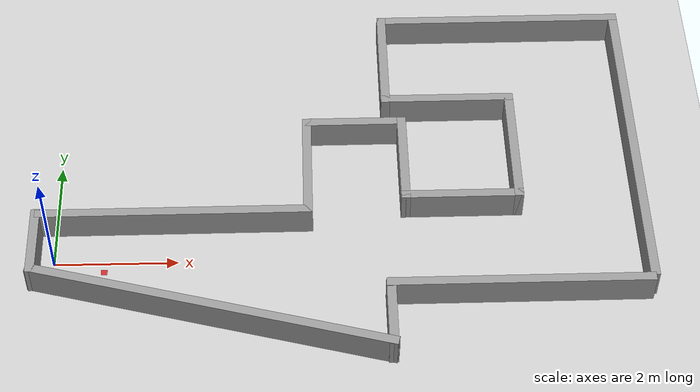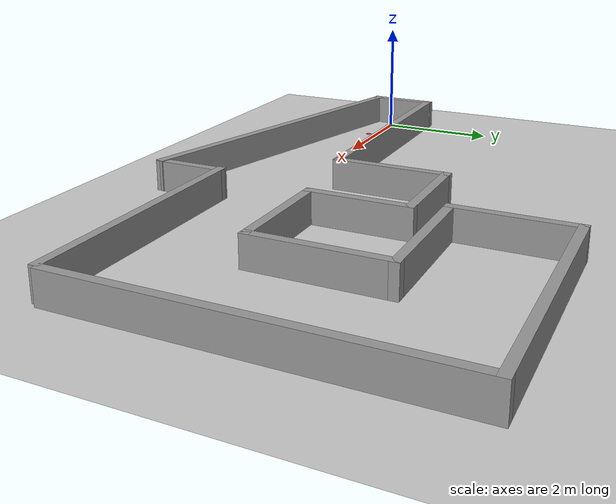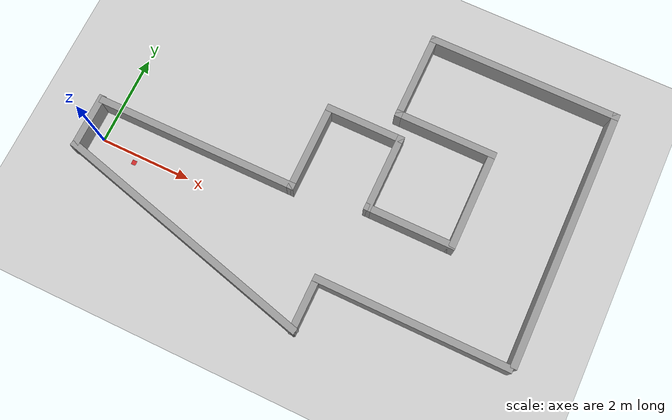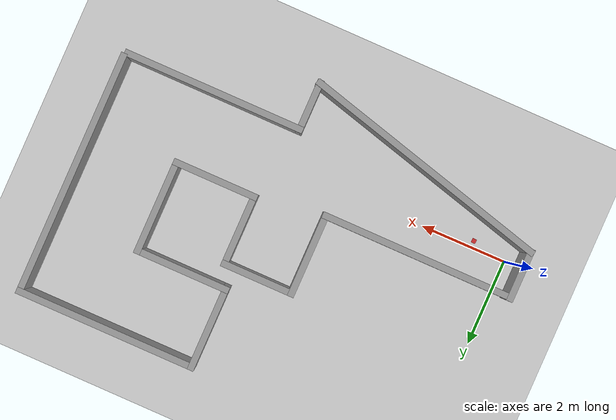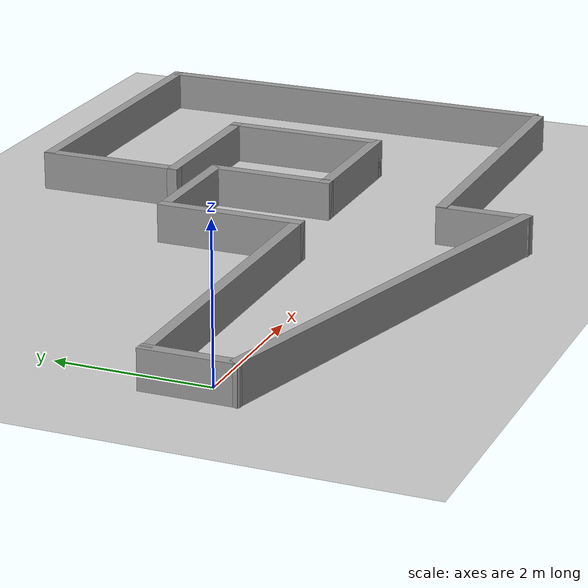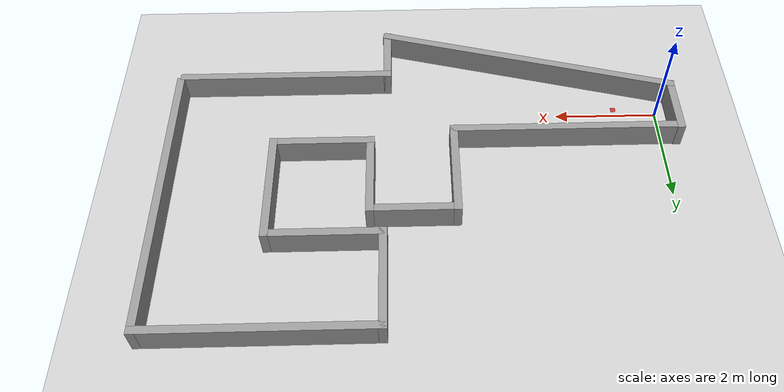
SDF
<sdf version="1.7">
 <world name="default">
  <scene><ambient>0.4 0.4 0.4 1</ambient><background>0.7 0.7 0.7 1</background><shadows>1</shadows></scene>
  <light name="sun" type="directional">
   <pose>0 0 10 0 -0 0</pose>
   <diffuse>0.8 0.8 0.8 1</diffuse>
   <specular>0.2 0.2 0.2 1</specular>
   <attenuation>
    <range>1000</range>
    <constant>0.9</constant>
    <linear>0.01</linear>
    <quadratic>0.001</quadratic>
   </attenuation>
   <direction>-0.5 0.1 -0.9</direction>
   <spot><inner_angle>0</inner_angle><outer_angle>0</outer_angle><falloff>0</falloff></spot>
  </light>
  <model name="ground_plane">
   <static>1</static>
   <link name="link">
    <collision name="collision">
     <geometry><plane><normal>0 0 1</normal><size>100 100</size></plane></geometry>
     <surface>
      <contact><collide_bitmask>65535</collide_bitmask></contact>
      <friction><ode><mu>100</mu><mu2>50</mu2></ode></friction>
     </surface>
    </collision>
    <visual name="visual">
     <cast_shadows>0</cast_shadows>
     <geometry><plane><normal>0 0 1</normal><size>100 100</size></plane></geometry>
     <material>
      <script><uri>file://media/materials/scripts/gazebo.material</uri><name>Gazebo/Grey</name></script>
     </material>
    </visual>
   </link>
  </model>
  <physics type="ode">
   <real_time_update_rate>1000</real_time_update_rate>
   <max_step_size>0.001</max_step_size>
   <real_time_factor>1</real_time_factor>
   <ode>
    <solver>
     <type>quick</type>
     <iters>150</iters>
     <precon_iters>0</precon_iters>
     <sor>1.4</sor>
     <use_dynamic_moi_rescaling>1</use_dynamic_moi_rescaling>
    </solver>
    <constraints>
     <cfm>1e-05</cfm>
     <erp>0.2</erp>
     <contact_max_correcting_vel>2000</contact_max_correcting_vel>
     <contact_surface_layer>0.01</contact_surface_layer>
    </constraints>
   </ode>
  </physics>
  <gravity>0 0 -9.8</gravity>
  <magnetic_field>6e-06 2.3e-05 -4.2e-05</magnetic_field>
  <atmosphere type="adiabatic"/>
  <spherical_coordinates>
   <surface_model>EARTH_WGS84</surface_model>
   <latitude_deg>0</latitude_deg>
   <longitude_deg>0</longitude_deg>
   <elevation>0</elevation>
   <heading_deg>0</heading_deg>
  </spherical_coordinates>
  <model name="Token">
   <link name="link_0">
    <inertial>
     <mass>8.311e-05</mass>
     <inertia><ixx>9e-08</ixx><ixy>0</ixy><ixz>0</ixz><iyy>1.4e-07</iyy><iyz>0</iyz><izz>2.3e-07</izz></inertia>
    </inertial>
    <self_collide>1</self_collide>
    <kinematic>1</kinematic>
    <visual name="visual">
     <geometry><box><size>0.1 0.1 1e-05</size></box></geometry>
     <material>
      <lighting>1</lighting>
      <script><uri>file://media/materials/scripts/gazebo.material</uri><name>Gazebo/Grey</name></script>
      <shader type="pixel"><normal_map>__default__</normal_map></shader>
      <ambient>0.796 0.169 0.169 1</ambient>
      <diffuse>0.792 0.169 0.169 1</diffuse>
      <specular>0.298 0.298 0.298 1</specular>
      <emissive>0.792 0.169 0.169 1</emissive>
     </material>
    </visual>
    <collision name="collision">
     <max_contacts>1</max_contacts>
     <geometry><box><size>0.1 0.1 1e-05</size></box></geometry>
     <surface>
      <friction>
       <ode><mu>1</mu><mu2>1</mu2><fdir1>0 0 0</fdir1><slip1>0</slip1><slip2>0</slip2></ode>
       <torsional>
        <coefficient>1</coefficient>
        <patch_radius>0</patch_radius>
        <surface_radius>0</surface_radius>
        <use_patch_radius>1</use_patch_radius>
        <ode><slip>0</slip></ode>
       </torsional>
      </friction>
      <bounce><restitution_coefficient>0</restitution_coefficient><threshold>1e+06</threshold></bounce>
      <contact>
       <collide_without_contact>0</collide_without_contact>
       <collide_without_contact_bitmask>1</collide_without_contact_bitmask>
       <collide_bitmask>1</collide_bitmask>
       <ode>
        <soft_cfm>0</soft_cfm>
        <soft_erp>0.2</soft_erp>
        <kp>1e+13</kp>
        <kd>1</kd>
        <max_vel>0.01</max_vel>
        <min_depth>0</min_depth>
       </ode>
       <bullet>
        <split_impulse>1</split_impulse>
        <split_impulse_penetration_threshold>-0.01</split_impulse_penetration_threshold>
        <soft_cfm>0</soft_cfm>
        <soft_erp>0.2</soft_erp>
        <kp>1e+13</kp>
        <kd>1</kd>
       </bullet>
      </contact>
     </surface>
    </collision>
   </link>
   <static>0</static>
   <pose>0.810591 -0.16058 0 0 -0 0</pose>
  </model>
  <model name="walls">
   <link name="Wall_10">
    <pose>2.01446 -0.541626 0 0 -0 0</pose>
    <inertial>
     <mass>1</mass>
     <inertia><ixx>1</ixx><ixy>0</ixy><ixz>0</ixz><iyy>1</iyy><iyz>0</iyz><izz>1</izz></inertia>
    </inertial>
    <visual name="Wall_10_Visual">
     <geometry><box><size>2 0.15 1</size></box></geometry>
     <material>
      <script><uri>file://media/materials/scripts/gazebo.material</uri><name>Gazebo/Grey</name></script>
      <ambient>1 1 1 1</ambient>
      <shader type="pixel"><normal_map>__default__</normal_map></shader>
      <diffuse>0.7 0.7 0.7 1</diffuse>
      <specular>0.01 0.01 0.01 1</specular>
      <emissive>0 0 0 1</emissive>
     </material>
     <meta><layer>0</layer></meta>
    </visual>
    <collision name="Wall_10_Collision">
     <geometry><box><size>2 0.15 1</size></box></geometry>
     <surface>
      <friction>
       <ode><mu>1</mu><mu2>1</mu2><fdir1>0 0 0</fdir1><slip1>0</slip1><slip2>0</slip2></ode>
       <torsional>
        <coefficient>1</coefficient>
        <patch_radius>0</patch_radius>
        <surface_radius>0</surface_radius>
        <use_patch_radius>1</use_patch_radius>
        <ode><slip>0</slip></ode>
       </torsional>
      </friction>
      <bounce><restitution_coefficient>0</restitution_coefficient><threshold>1e+06</threshold></bounce>
      <contact>
       <collide_without_contact>0</collide_without_contact>
       <collide_without_contact_bitmask>1</collide_without_contact_bitmask>
       <collide_bitmask>1</collide_bitmask>
       <ode>
        <soft_cfm>0</soft_cfm>
        <soft_erp>0.2</soft_erp>
        <kp>1e+13</kp>
        <kd>1</kd>
        <max_vel>0.01</max_vel>
        <min_depth>0</min_depth>
       </ode>
       <bullet>
        <split_impulse>1</split_impulse>
        <split_impulse_penetration_threshold>-0.01</split_impulse_penetration_threshold>
        <soft_cfm>0</soft_cfm>
        <soft_erp>0.2</soft_erp>
        <kp>1e+13</kp>
        <kd>1</kd>
       </bullet>
      </contact>
     </surface>
    </collision>
   </link>
   <link name="Wall_14">
    <pose>2.93946 0.508374 0 0 -0 1.5708</pose>
    <inertial>
     <mass>1</mass>
     <inertia><ixx>1</ixx><ixy>0</ixy><ixz>0</ixz><iyy>1</iyy><iyz>0</iyz><izz>1</izz></inertia>
    </inertial>
    <visual name="Wall_14_Visual">
     <geometry><box><size>2.25 0.15 1</size></box></geometry>
     <material>
      <script><uri>file://media/materials/scripts/gazebo.material</uri><name>Gazebo/Grey</name></script>
      <ambient>1 1 1 1</ambient>
      <shader type="pixel"><normal_map>__default__</normal_map></shader>
      <diffuse>0.7 0.7 0.7 1</diffuse>
      <specular>0.01 0.01 0.01 1</specular>
      <emissive>0 0 0 1</emissive>
     </material>
     <meta><layer>0</layer></meta>
    </visual>
    <collision name="Wall_14_Collision">
     <geometry><box><size>2.25 0.15 1</size></box></geometry>
     <surface>
      <friction>
       <ode><mu>1</mu><mu2>1</mu2><fdir1>0 0 0</fdir1><slip1>0</slip1><slip2>0</slip2></ode>
       <torsional>
        <coefficient>1</coefficient>
        <patch_radius>0</patch_radius>
        <surface_radius>0</surface_radius>
        <use_patch_radius>1</use_patch_radius>
        <ode><slip>0</slip></ode>
       </torsional>
      </friction>
      <bounce><restitution_coefficient>0</restitution_coefficient><threshold>1e+06</threshold></bounce>
      <contact>
       <collide_without_contact>0</collide_without_contact>
       <collide_without_contact_bitmask>1</collide_without_contact_bitmask>
       <collide_bitmask>1</collide_bitmask>
       <ode>
        <soft_cfm>0</soft_cfm>
        <soft_erp>0.2</soft_erp>
        <kp>1e+13</kp>
        <kd>1</kd>
        <max_vel>0.01</max_vel>
        <min_depth>0</min_depth>
       </ode>
       <bullet>
        <split_impulse>1</split_impulse>
        <split_impulse_penetration_threshold>-0.01</split_impulse_penetration_threshold>
        <soft_cfm>0</soft_cfm>
        <soft_erp>0.2</soft_erp>
        <kp>1e+13</kp>
        <kd>1</kd>
       </bullet>
      </contact>
     </surface>
    </collision>
   </link>
   <link name="Wall_15">
    <pose>1.88946 1.55837 0 0 -0 3.14159</pose>
    <inertial>
     <mass>1</mass>
     <inertia><ixx>1</ixx><ixy>0</ixy><ixz>0</ixz><iyy>1</iyy><iyz>0</iyz><izz>1</izz></inertia>
    </inertial>
    <visual name="Wall_15_Visual">
     <geometry><box><size>2.25 0.15 1</size></box></geometry>
     <material>
      <script><uri>file://media/materials/scripts/gazebo.material</uri><name>Gazebo/Grey</name></script>
      <ambient>1 1 1 1</ambient>
      <shader type="pixel"><normal_map>__default__</normal_map></shader>
      <diffuse>0.7 0.7 0.7 1</diffuse>
      <specular>0.01 0.01 0.01 1</specular>
      <emissive>0 0 0 1</emissive>
     </material>
     <meta><layer>0</layer></meta>
    </visual>
    <collision name="Wall_15_Collision">
     <geometry><box><size>2.25 0.15 1</size></box></geometry>
     <surface>
      <friction>
       <ode><mu>1</mu><mu2>1</mu2><fdir1>0 0 0</fdir1><slip1>0</slip1><slip2>0</slip2></ode>
       <torsional>
        <coefficient>1</coefficient>
        <patch_radius>0</patch_radius>
        <surface_radius>0</surface_radius>
        <use_patch_radius>1</use_patch_radius>
        <ode><slip>0</slip></ode>
       </torsional>
      </friction>
      <bounce><restitution_coefficient>0</restitution_coefficient><threshold>1e+06</threshold></bounce>
      <contact>
       <collide_without_contact>0</collide_without_contact>
       <collide_without_contact_bitmask>1</collide_without_contact_bitmask>
       <collide_bitmask>1</collide_bitmask>
       <ode>
        <soft_cfm>0</soft_cfm>
        <soft_erp>0.2</soft_erp>
        <kp>1e+13</kp>
        <kd>1</kd>
        <max_vel>0.01</max_vel>
        <min_depth>0</min_depth>
       </ode>
       <bullet>
        <split_impulse>1</split_impulse>
        <split_impulse_penetration_threshold>-0.01</split_impulse_penetration_threshold>
        <soft_cfm>0</soft_cfm>
        <soft_erp>0.2</soft_erp>
        <kp>1e+13</kp>
        <kd>1</kd>
       </bullet>
      </contact>
     </surface>
    </collision>
   </link>
   <link name="Wall_16">
    <pose>0.839457 2.48337 0 0 -0 1.5708</pose>
    <inertial>
     <mass>1</mass>
     <inertia><ixx>1</ixx><ixy>0</ixy><ixz>0</ixz><iyy>1</iyy><iyz>0</iyz><izz>1</izz></inertia>
    </inertial>
    <visual name="Wall_16_Visual">
     <geometry><box><size>2 0.15 1</size></box></geometry>
     <material>
      <script><uri>file://media/materials/scripts/gazebo.material</uri><name>Gazebo/Grey</name></script>
      <ambient>1 1 1 1</ambient>
      <shader type="pixel"><normal_map>__default__</normal_map></shader>
      <diffuse>0.7 0.7 0.7 1</diffuse>
      <specular>0.01 0.01 0.01 1</specular>
      <emissive>0 0 0 1</emissive>
     </material>
     <meta><layer>0</layer></meta>
    </visual>
    <collision name="Wall_16_Collision">
     <geometry><box><size>2 0.15 1</size></box></geometry>
     <surface>
      <friction>
       <ode><mu>1</mu><mu2>1</mu2><fdir1>0 0 0</fdir1><slip1>0</slip1><slip2>0</slip2></ode>
       <torsional>
        <coefficient>1</coefficient>
        <patch_radius>0</patch_radius>
        <surface_radius>0</surface_radius>
        <use_patch_radius>1</use_patch_radius>
        <ode><slip>0</slip></ode>
       </torsional>
      </friction>
      <bounce><restitution_coefficient>0</restitution_coefficient><threshold>1e+06</threshold></bounce>
      <contact>
       <collide_without_contact>0</collide_without_contact>
       <collide_without_contact_bitmask>1</collide_without_contact_bitmask>
       <collide_bitmask>1</collide_bitmask>
       <ode>
        <soft_cfm>0</soft_cfm>
        <soft_erp>0.2</soft_erp>
        <kp>1e+13</kp>
        <kd>1</kd>
        <max_vel>0.01</max_vel>
        <min_depth>0</min_depth>
       </ode>
       <bullet>
        <split_impulse>1</split_impulse>
        <split_impulse_penetration_threshold>-0.01</split_impulse_penetration_threshold>
        <soft_cfm>0</soft_cfm>
        <soft_erp>0.2</soft_erp>
        <kp>1e+13</kp>
        <kd>1</kd>
       </bullet>
      </contact>
     </surface>
    </collision>
   </link>
   <link name="Wall_17">
    <pose>2.88946 3.40837 0 0 -0 0</pose>
    <inertial>
     <mass>1</mass>
     <inertia><ixx>1</ixx><ixy>0</ixy><ixz>0</ixz><iyy>1</iyy><iyz>0</iyz><izz>1</izz></inertia>
    </inertial>
    <visual name="Wall_17_Visual">
     <geometry><box><size>4.25 0.15 1</size></box></geometry>
     <material>
      <script><uri>file://media/materials/scripts/gazebo.material</uri><name>Gazebo/Grey</name></script>
      <ambient>1 1 1 1</ambient>
      <shader type="pixel"><normal_map>__default__</normal_map></shader>
      <diffuse>0.7 0.7 0.7 1</diffuse>
      <specular>0.01 0.01 0.01 1</specular>
      <emissive>0 0 0 1</emissive>
     </material>
     <meta><layer>0</layer></meta>
    </visual>
    <collision name="Wall_17_Collision">
     <geometry><box><size>4.25 0.15 1</size></box></geometry>
     <surface>
      <friction>
       <ode><mu>1</mu><mu2>1</mu2><fdir1>0 0 0</fdir1><slip1>0</slip1><slip2>0</slip2></ode>
       <torsional>
        <coefficient>1</coefficient>
        <patch_radius>0</patch_radius>
        <surface_radius>0</surface_radius>
        <use_patch_radius>1</use_patch_radius>
        <ode><slip>0</slip></ode>
       </torsional>
      </friction>
      <bounce><restitution_coefficient>0</restitution_coefficient><threshold>1e+06</threshold></bounce>
      <contact>
       <collide_without_contact>0</collide_without_contact>
       <collide_without_contact_bitmask>1</collide_without_contact_bitmask>
       <collide_bitmask>1</collide_bitmask>
       <ode>
        <soft_cfm>0</soft_cfm>
        <soft_erp>0.2</soft_erp>
        <kp>1e+13</kp>
        <kd>1</kd>
        <max_vel>0.01</max_vel>
        <min_depth>0</min_depth>
       </ode>
       <bullet>
        <split_impulse>1</split_impulse>
        <split_impulse_penetration_threshold>-0.01</split_impulse_penetration_threshold>
        <soft_cfm>0</soft_cfm>
        <soft_erp>0.2</soft_erp>
        <kp>1e+13</kp>
        <kd>1</kd>
       </bullet>
      </contact>
     </surface>
    </collision>
   </link>
   <link name="Wall_19">
    <pose>4.93946 0.608374 0 0 0 -1.5708</pose>
    <inertial>
     <mass>1</mass>
     <inertia><ixx>1</ixx><ixy>0</ixy><ixz>0</ixz><iyy>1</iyy><iyz>0</iyz><izz>1</izz></inertia>
    </inertial>
    <visual name="Wall_19_Visual">
     <geometry><box><size>5.75 0.15 1</size></box></geometry>
     <material>
      <script><uri>file://media/materials/scripts/gazebo.material</uri><name>Gazebo/Grey</name></script>
      <ambient>1 1 1 1</ambient>
      <shader type="pixel"><normal_map>__default__</normal_map></shader>
      <diffuse>0.7 0.7 0.7 1</diffuse>
      <specular>0.01 0.01 0.01 1</specular>
      <emissive>0 0 0 1</emissive>
     </material>
     <meta><layer>0</layer></meta>
    </visual>
    <collision name="Wall_19_Collision">
     <geometry><box><size>5.75 0.15 1</size></box></geometry>
     <surface>
      <friction>
       <ode><mu>1</mu><mu2>1</mu2><fdir1>0 0 0</fdir1><slip1>0</slip1><slip2>0</slip2></ode>
       <torsional>
        <coefficient>1</coefficient>
        <patch_radius>0</patch_radius>
        <surface_radius>0</surface_radius>
        <use_patch_radius>1</use_patch_radius>
        <ode><slip>0</slip></ode>
       </torsional>
      </friction>
      <bounce><restitution_coefficient>0</restitution_coefficient><threshold>1e+06</threshold></bounce>
      <contact>
       <collide_without_contact>0</collide_without_contact>
       <collide_without_contact_bitmask>1</collide_without_contact_bitmask>
       <collide_bitmask>1</collide_bitmask>
       <ode>
        <soft_cfm>0</soft_cfm>
        <soft_erp>0.2</soft_erp>
        <kp>1e+13</kp>
        <kd>1</kd>
        <max_vel>0.01</max_vel>
        <min_depth>0</min_depth>
       </ode>
       <bullet>
        <split_impulse>1</split_impulse>
        <split_impulse_penetration_threshold>-0.01</split_impulse_penetration_threshold>
        <soft_cfm>0</soft_cfm>
        <soft_erp>0.2</soft_erp>
        <kp>1e+13</kp>
        <kd>1</kd>
       </bullet>
      </contact>
     </surface>
    </collision>
   </link>
   <link name="Wall_2">
    <pose>-2.07414 -2.63458 0 0 0 -0.259759</pose>
    <inertial>
     <mass>1</mass>
     <inertia><ixx>1</ixx><ixy>0</ixy><ixz>0</ixz><iyy>1</iyy><iyz>0</iyz><izz>1</izz></inertia>
    </inertial>
    <visual name="Wall_2_Visual">
     <geometry><box><size>6.04491 0.15 1</size></box></geometry>
     <material>
      <script><uri>file://media/materials/scripts/gazebo.material</uri><name>Gazebo/Grey</name></script>
      <ambient>1 1 1 1</ambient>
      <shader type="pixel"><normal_map>__default__</normal_map></shader>
      <diffuse>0.7 0.7 0.7 1</diffuse>
      <specular>0.01 0.01 0.01 1</specular>
      <emissive>0 0 0 1</emissive>
     </material>
     <meta><layer>0</layer></meta>
    </visual>
    <collision name="Wall_2_Collision">
     <geometry><box><size>6.04491 0.15 1</size></box></geometry>
     <surface>
      <friction>
       <ode><mu>1</mu><mu2>1</mu2><fdir1>0 0 0</fdir1><slip1>0</slip1><slip2>0</slip2></ode>
       <torsional>
        <coefficient>1</coefficient>
        <patch_radius>0</patch_radius>
        <surface_radius>0</surface_radius>
        <use_patch_radius>1</use_patch_radius>
        <ode><slip>0</slip></ode>
       </torsional>
      </friction>
      <bounce><restitution_coefficient>0</restitution_coefficient><threshold>1e+06</threshold></bounce>
      <contact>
       <collide_without_contact>0</collide_without_contact>
       <collide_without_contact_bitmask>1</collide_without_contact_bitmask>
       <collide_bitmask>1</collide_bitmask>
       <ode>
        <soft_cfm>0</soft_cfm>
        <soft_erp>0.2</soft_erp>
        <kp>1e+13</kp>
        <kd>1</kd>
        <max_vel>0.01</max_vel>
        <min_depth>0</min_depth>
       </ode>
       <bullet>
        <split_impulse>1</split_impulse>
        <split_impulse_penetration_threshold>-0.01</split_impulse_penetration_threshold>
        <soft_cfm>0</soft_cfm>
        <soft_erp>0.2</soft_erp>
        <kp>1e+13</kp>
        <kd>1</kd>
       </bullet>
      </contact>
     </surface>
    </collision>
   </link>
   <link name="Wall_21">
    <pose>0.774437 -2.84163 0 0 -0 1.5708</pose>
    <inertial>
     <mass>1</mass>
     <inertia><ixx>1</ixx><ixy>0</ixy><ixz>0</ixz><iyy>1</iyy><iyz>0</iyz><izz>1</izz></inertia>
    </inertial>
    <visual name="Wall_21_Visual">
     <geometry><box><size>1.25 0.15 0.98</size></box></geometry>
     <material>
      <script><uri>file://media/materials/scripts/gazebo.material</uri><name>Gazebo/Grey</name></script>
      <ambient>1 1 1 1</ambient>
      <shader type="pixel"><normal_map>__default__</normal_map></shader>
      <diffuse>0.7 0.7 0.7 1</diffuse>
      <specular>0.01 0.01 0.01 1</specular>
      <emissive>0 0 0 1</emissive>
     </material>
     <meta><layer>0</layer></meta>
    </visual>
    <collision name="Wall_21_Collision">
     <geometry><box><size>1.25 0.15 1</size></box></geometry>
     <surface>
      <friction>
       <ode><mu>1</mu><mu2>1</mu2><fdir1>0 0 0</fdir1><slip1>0</slip1><slip2>0</slip2></ode>
       <torsional>
        <coefficient>1</coefficient>
        <patch_radius>0</patch_radius>
        <surface_radius>0</surface_radius>
        <use_patch_radius>1</use_patch_radius>
        <ode><slip>0</slip></ode>
       </torsional>
      </friction>
      <bounce><restitution_coefficient>0</restitution_coefficient><threshold>1e+06</threshold></bounce>
      <contact>
       <collide_without_contact>0</collide_without_contact>
       <collide_without_contact_bitmask>1</collide_without_contact_bitmask>
       <collide_bitmask>1</collide_bitmask>
       <ode>
        <soft_cfm>0</soft_cfm>
        <soft_erp>0.2</soft_erp>
        <kp>1e+13</kp>
        <kd>1</kd>
        <max_vel>0.01</max_vel>
        <min_depth>0</min_depth>
       </ode>
       <bullet>
        <split_impulse>1</split_impulse>
        <split_impulse_penetration_threshold>-0.01</split_impulse_penetration_threshold>
        <soft_cfm>0</soft_cfm>
        <soft_erp>0.2</soft_erp>
        <kp>1e+13</kp>
        <kd>1</kd>
       </bullet>
      </contact>
     </surface>
    </collision>
   </link>
   <link name="Wall_22">
    <pose>2.82444 -2.29163 0 0 -0 0</pose>
    <inertial>
     <mass>1</mass>
     <inertia><ixx>1</ixx><ixy>0</ixy><ixz>0</ixz><iyy>1</iyy><iyz>0</iyz><izz>1</izz></inertia>
    </inertial>
    <visual name="Wall_22_Visual">
     <geometry><box><size>4.25 0.15 1</size></box></geometry>
     <material>
      <script><uri>file://media/materials/scripts/gazebo.material</uri><name>Gazebo/Grey</name></script>
      <ambient>1 1 1 1</ambient>
      <shader type="pixel"><normal_map>__default__</normal_map></shader>
      <diffuse>0.7 0.7 0.7 1</diffuse>
      <specular>0.01 0.01 0.01 1</specular>
      <emissive>0 0 0 1</emissive>
     </material>
     <meta><layer>0</layer></meta>
    </visual>
    <collision name="Wall_22_Collision">
     <geometry><box><size>4.25 0.15 1</size></box></geometry>
     <surface>
      <friction>
       <ode><mu>1</mu><mu2>1</mu2><fdir1>0 0 0</fdir1><slip1>0</slip1><slip2>0</slip2></ode>
       <torsional>
        <coefficient>1</coefficient>
        <patch_radius>0</patch_radius>
        <surface_radius>0</surface_radius>
        <use_patch_radius>1</use_patch_radius>
        <ode><slip>0</slip></ode>
       </torsional>
      </friction>
      <bounce><restitution_coefficient>0</restitution_coefficient><threshold>1e+06</threshold></bounce>
      <contact>
       <collide_without_contact>0</collide_without_contact>
       <collide_without_contact_bitmask>1</collide_without_contact_bitmask>
       <collide_bitmask>1</collide_bitmask>
       <ode>
        <soft_cfm>0</soft_cfm>
        <soft_erp>0.2</soft_erp>
        <kp>1e+13</kp>
        <kd>1</kd>
        <max_vel>0.01</max_vel>
        <min_depth>0</min_depth>
       </ode>
       <bullet>
        <split_impulse>1</split_impulse>
        <split_impulse_penetration_threshold>-0.01</split_impulse_penetration_threshold>
        <soft_cfm>0</soft_cfm>
        <soft_erp>0.2</soft_erp>
        <kp>1e+13</kp>
        <kd>1</kd>
       </bullet>
      </contact>
     </surface>
    </collision>
   </link>
   <link name="Wall_24">
    <pose>-4.92271 -1.32753 0 0 -0 1.5708</pose>
    <inertial>
     <inertia><ixx>0</ixx><ixy>0</ixy><ixz>0</ixz><iyy>0</iyy><iyz>0</iyz><izz>0</izz></inertia>
     <mass>0</mass>
    </inertial>
    <visual name="Wall_24_Visual">
     <geometry><box><size>1.25 0.15 1</size></box></geometry>
     <material>
      <script><uri>file://media/materials/scripts/gazebo.material</uri><name>Gazebo/Grey</name></script>
      <ambient>1 1 1 1</ambient>
      <shader type="pixel"><normal_map>__default__</normal_map></shader>
      <diffuse>0.7 0.7 0.7 1</diffuse>
      <specular>0.01 0.01 0.01 1</specular>
      <emissive>0 0 0 1</emissive>
     </material>
     <meta><layer>0</layer></meta>
    </visual>
    <collision name="Wall_24_Collision">
     <geometry><box><size>1.25 0.15 1</size></box></geometry>
     <surface>
      <friction>
       <ode><mu>1</mu><mu2>1</mu2><fdir1>0 0 0</fdir1><slip1>0</slip1><slip2>0</slip2></ode>
       <torsional>
        <coefficient>1</coefficient>
        <patch_radius>0</patch_radius>
        <surface_radius>0</surface_radius>
        <use_patch_radius>1</use_patch_radius>
        <ode><slip>0</slip></ode>
       </torsional>
      </friction>
      <bounce><restitution_coefficient>0</restitution_coefficient><threshold>1e+06</threshold></bounce>
      <contact>
       <collide_without_contact>0</collide_without_contact>
       <collide_without_contact_bitmask>1</collide_without_contact_bitmask>
       <collide_bitmask>1</collide_bitmask>
       <ode>
        <soft_cfm>0</soft_cfm>
        <soft_erp>0.2</soft_erp>
        <kp>1e+13</kp>
        <kd>1</kd>
        <max_vel>0.01</max_vel>
        <min_depth>0</min_depth>
       </ode>
       <bullet>
        <split_impulse>1</split_impulse>
        <split_impulse_penetration_threshold>-0.01</split_impulse_penetration_threshold>
        <soft_cfm>0</soft_cfm>
        <soft_erp>0.2</soft_erp>
        <kp>1e+13</kp>
        <kd>1</kd>
       </bullet>
      </contact>
     </surface>
    </collision>
   </link>
   <link name="Wall_5">
    <pose>-2.68554 -0.791626 0 0 -0 0</pose>
    <inertial>
     <mass>1</mass>
     <inertia><ixx>1</ixx><ixy>0</ixy><ixz>0</ixz><iyy>1</iyy><iyz>0</iyz><izz>1</izz></inertia>
    </inertial>
    <visual name="Wall_5_Visual">
     <geometry><box><size>4.5 0.15 1</size></box></geometry>
     <material>
      <script><uri>file://media/materials/scripts/gazebo.material</uri><name>Gazebo/Grey</name></script>
      <ambient>1 1 1 1</ambient>
      <shader type="pixel"><normal_map>__default__</normal_map></shader>
      <diffuse>0.7 0.7 0.7 1</diffuse>
      <specular>0.01 0.01 0.01 1</specular>
      <emissive>0 0 0 1</emissive>
     </material>
     <meta><layer>0</layer></meta>
    </visual>
    <collision name="Wall_5_Collision">
     <geometry><box><size>4.5 0.15 1</size></box></geometry>
     <surface>
      <friction>
       <ode><mu>1</mu><mu2>1</mu2><fdir1>0 0 0</fdir1><slip1>0</slip1><slip2>0</slip2></ode>
       <torsional>
        <coefficient>1</coefficient>
        <patch_radius>0</patch_radius>
        <surface_radius>0</surface_radius>
        <use_patch_radius>1</use_patch_radius>
        <ode><slip>0</slip></ode>
       </torsional>
      </friction>
      <bounce><restitution_coefficient>0</restitution_coefficient><threshold>1e+06</threshold></bounce>
      <contact>
       <collide_without_contact>0</collide_without_contact>
       <collide_without_contact_bitmask>1</collide_without_contact_bitmask>
       <collide_bitmask>1</collide_bitmask>
       <ode>
        <soft_cfm>0</soft_cfm>
        <soft_erp>0.2</soft_erp>
        <kp>1e+13</kp>
        <kd>1</kd>
        <max_vel>0.01</max_vel>
        <min_depth>0</min_depth>
       </ode>
       <bullet>
        <split_impulse>1</split_impulse>
        <split_impulse_penetration_threshold>-0.01</split_impulse_penetration_threshold>
        <soft_cfm>0</soft_cfm>
        <soft_erp>0.2</soft_erp>
        <kp>1e+13</kp>
        <kd>1</kd>
       </bullet>
      </contact>
     </surface>
    </collision>
   </link>
   <link name="Wall_7">
    <pose>-0.510543 0.133374 0 0 -0 1.5708</pose>
    <inertial>
     <mass>1</mass>
     <inertia><ixx>1</ixx><ixy>0</ixy><ixz>0</ixz><iyy>1</iyy><iyz>0</iyz><izz>1</izz></inertia>
    </inertial>
    <visual name="Wall_7_Visual">
     <geometry><box><size>2 0.15 1</size></box></geometry>
     <material>
      <script><uri>file://media/materials/scripts/gazebo.material</uri><name>Gazebo/Grey</name></script>
      <ambient>1 1 1 1</ambient>
      <shader type="pixel"><normal_map>__default__</normal_map></shader>
      <diffuse>0.7 0.7 0.7 1</diffuse>
      <specular>0.01 0.01 0.01 1</specular>
      <emissive>0 0 0 1</emissive>
     </material>
     <meta><layer>0</layer></meta>
    </visual>
    <collision name="Wall_7_Collision">
     <geometry><box><size>2 0.15 1</size></box></geometry>
     <surface>
      <friction>
       <ode><mu>1</mu><mu2>1</mu2><fdir1>0 0 0</fdir1><slip1>0</slip1><slip2>0</slip2></ode>
       <torsional>
        <coefficient>1</coefficient>
        <patch_radius>0</patch_radius>
        <surface_radius>0</surface_radius>
        <use_patch_radius>1</use_patch_radius>
        <ode><slip>0</slip></ode>
       </torsional>
      </friction>
      <bounce><restitution_coefficient>0</restitution_coefficient><threshold>1e+06</threshold></bounce>
      <contact>
       <collide_without_contact>0</collide_without_contact>
       <collide_without_contact_bitmask>1</collide_without_contact_bitmask>
       <collide_bitmask>1</collide_bitmask>
       <ode>
        <soft_cfm>0</soft_cfm>
        <soft_erp>0.2</soft_erp>
        <kp>1e+13</kp>
        <kd>1</kd>
        <max_vel>0.01</max_vel>
        <min_depth>0</min_depth>
       </ode>
       <bullet>
        <split_impulse>1</split_impulse>
        <split_impulse_penetration_threshold>-0.01</split_impulse_penetration_threshold>
        <soft_cfm>0</soft_cfm>
        <soft_erp>0.2</soft_erp>
        <kp>1e+13</kp>
        <kd>1</kd>
       </bullet>
      </contact>
     </surface>
    </collision>
   </link>
   <link name="Wall_8">
    <pose>0.289457 1.05837 0 0 -0 0</pose>
    <inertial>
     <mass>1</mass>
     <inertia><ixx>1</ixx><ixy>0</ixy><ixz>0</ixz><iyy>1</iyy><iyz>0</iyz><izz>1</izz></inertia>
    </inertial>
    <visual name="Wall_8_Visual">
     <geometry><box><size>1.75 0.15 1</size></box></geometry>
     <material>
      <script><uri>file://media/materials/scripts/gazebo.material</uri><name>Gazebo/Grey</name></script>
      <ambient>1 1 1 1</ambient>
      <shader type="pixel"><normal_map>__default__</normal_map></shader>
      <diffuse>0.7 0.7 0.7 1</diffuse>
      <specular>0.01 0.01 0.01 1</specular>
      <emissive>0 0 0 1</emissive>
     </material>
     <meta><layer>0</layer></meta>
    </visual>
    <collision name="Wall_8_Collision">
     <geometry><box><size>1.75 0.15 1</size></box></geometry>
     <surface>
      <friction>
       <ode><mu>1</mu><mu2>1</mu2><fdir1>0 0 0</fdir1><slip1>0</slip1><slip2>0</slip2></ode>
       <torsional>
        <coefficient>1</coefficient>
        <patch_radius>0</patch_radius>
        <surface_radius>0</surface_radius>
        <use_patch_radius>1</use_patch_radius>
        <ode><slip>0</slip></ode>
       </torsional>
      </friction>
      <bounce><restitution_coefficient>0</restitution_coefficient><threshold>1e+06</threshold></bounce>
      <contact>
       <collide_without_contact>0</collide_without_contact>
       <collide_without_contact_bitmask>1</collide_without_contact_bitmask>
       <collide_bitmask>1</collide_bitmask>
       <ode>
        <soft_cfm>0</soft_cfm>
        <soft_erp>0.2</soft_erp>
        <kp>1e+13</kp>
        <kd>1</kd>
        <max_vel>0.01</max_vel>
        <min_depth>0</min_depth>
       </ode>
       <bullet>
        <split_impulse>1</split_impulse>
        <split_impulse_penetration_threshold>-0.01</split_impulse_penetration_threshold>
        <soft_cfm>0</soft_cfm>
        <soft_erp>0.2</soft_erp>
        <kp>1e+13</kp>
        <kd>1</kd>
       </bullet>
      </contact>
     </surface>
    </collision>
   </link>
   <link name="Wall_9">
    <pose>1.08946 0.258374 0 0 0 -1.5708</pose>
    <inertial>
     <mass>1</mass>
     <inertia><ixx>1</ixx><ixy>0</ixy><ixz>0</ixz><iyy>1</iyy><iyz>0</iyz><izz>1</izz></inertia>
    </inertial>
    <visual name="Wall_9_Visual">
     <geometry><box><size>1.75 0.15 1</size></box></geometry>
     <material>
      <script><uri>file://media/materials/scripts/gazebo.material</uri><name>Gazebo/Grey</name></script>
      <ambient>1 1 1 1</ambient>
      <shader type="pixel"><normal_map>__default__</normal_map></shader>
      <diffuse>0.7 0.7 0.7 1</diffuse>
      <specular>0.01 0.01 0.01 1</specular>
      <emissive>0 0 0 1</emissive>
     </material>
     <meta><layer>0</layer></meta>
    </visual>
    <collision name="Wall_9_Collision">
     <geometry><box><size>1.75 0.15 1</size></box></geometry>
     <surface>
      <friction>
       <ode><mu>1</mu><mu2>1</mu2><fdir1>0 0 0</fdir1><slip1>0</slip1><slip2>0</slip2></ode>
       <torsional>
        <coefficient>1</coefficient>
        <patch_radius>0</patch_radius>
        <surface_radius>0</surface_radius>
        <use_patch_radius>1</use_patch_radius>
        <ode><slip>0</slip></ode>
       </torsional>
      </friction>
      <bounce><restitution_coefficient>0</restitution_coefficient><threshold>1e+06</threshold></bounce>
      <contact>
       <collide_without_contact>0</collide_without_contact>
       <collide_without_contact_bitmask>1</collide_without_contact_bitmask>
       <collide_bitmask>1</collide_bitmask>
       <ode>
        <soft_cfm>0</soft_cfm>
        <soft_erp>0.2</soft_erp>
        <kp>1e+13</kp>
        <kd>1</kd>
        <max_vel>0.01</max_vel>
        <min_depth>0</min_depth>
       </ode>
       <bullet>
        <split_impulse>1</split_impulse>
        <split_impulse_penetration_threshold>-0.01</split_impulse_penetration_threshold>
        <soft_cfm>0</soft_cfm>
        <soft_erp>0.2</soft_erp>
        <kp>1e+13</kp>
        <kd>1</kd>
       </bullet>
      </contact>
     </surface>
    </collision>
   </link>
   <static>1</static>
   <pose>4.61697 1.46731 0.006851 0 -0 0</pose>
  </model>
 </world>
</sdf>
